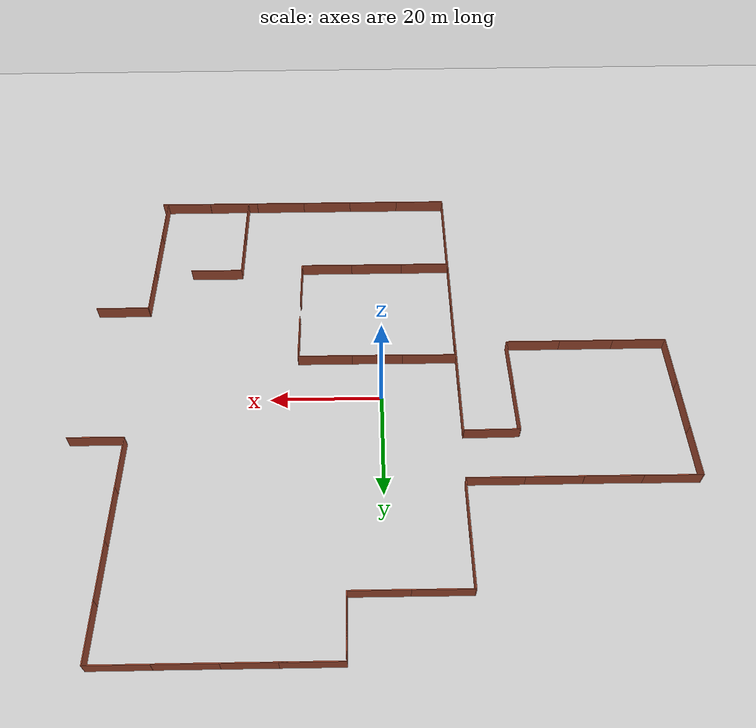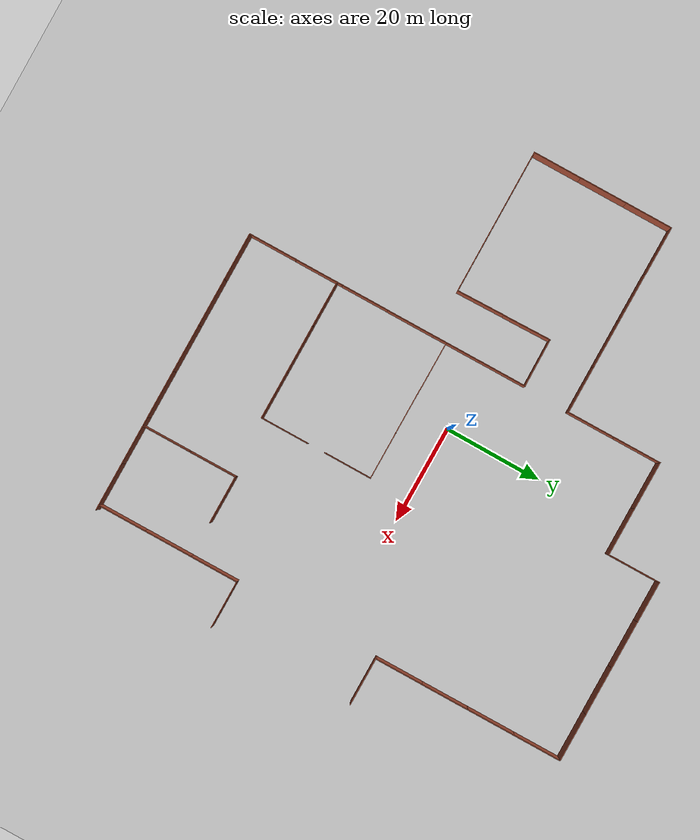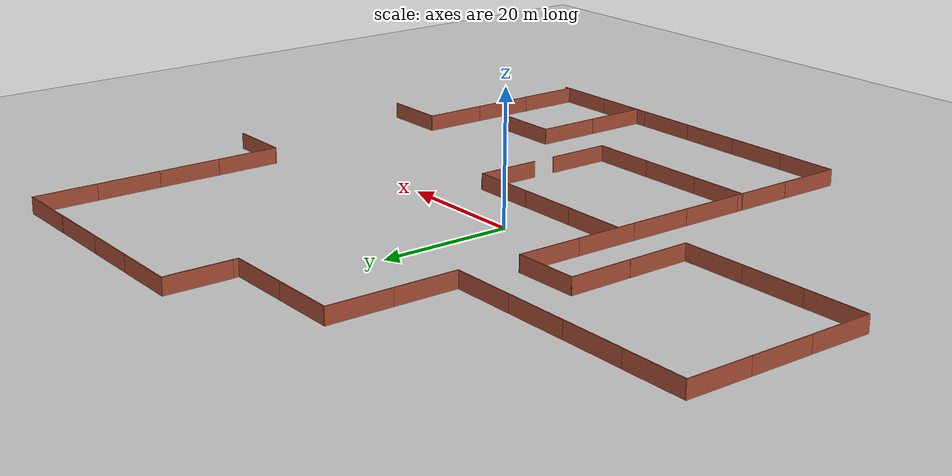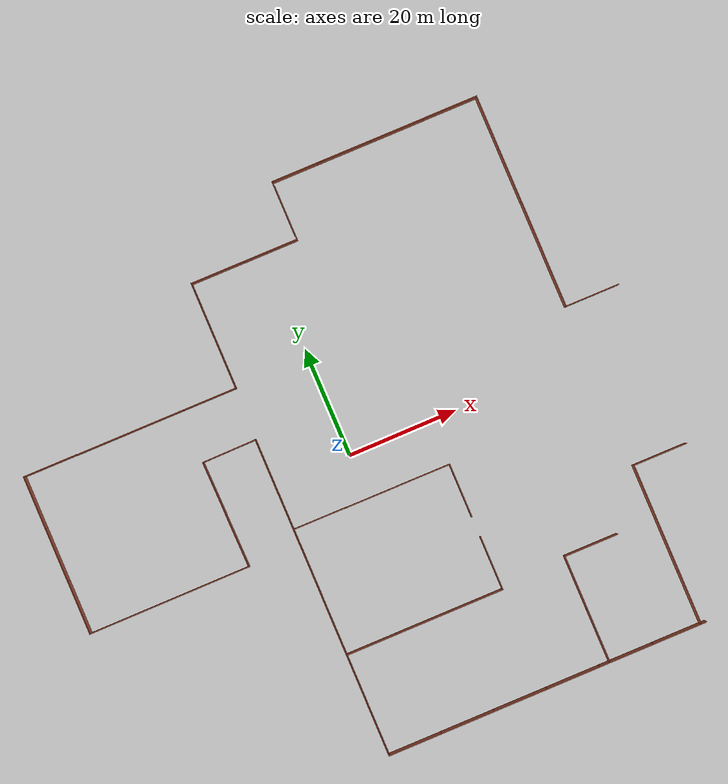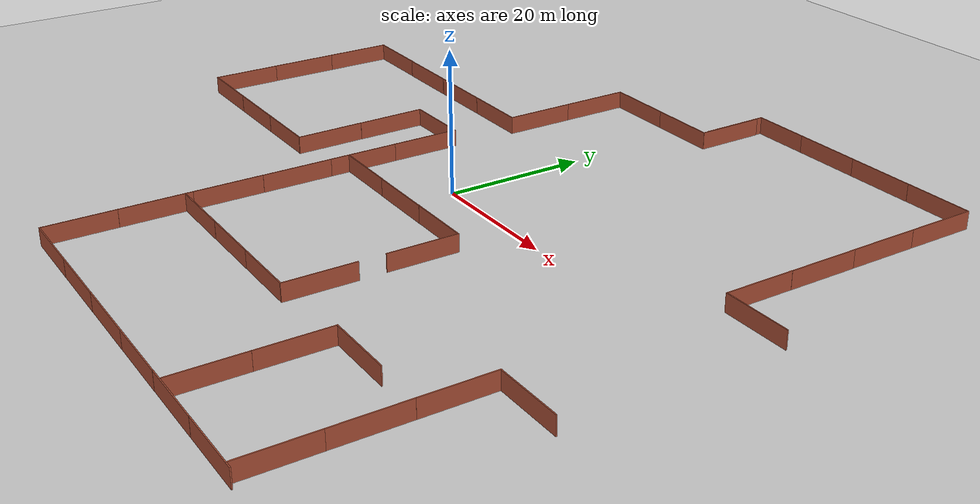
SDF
<sdf version="1.7">
 <world name="default">
  <light name="sun" type="directional">
   <pose>0 0 10 0 -0 0</pose>
   <diffuse>0.8 0.8 0.8 1</diffuse>
   <specular>0.2 0.2 0.2 1</specular>
   <attenuation>
    <range>1000</range>
    <constant>0.9</constant>
    <linear>0.01</linear>
    <quadratic>0.001</quadratic>
   </attenuation>
   <direction>-0.5 0.1 -0.9</direction>
   <spot><inner_angle>0</inner_angle><outer_angle>0</outer_angle><falloff>0</falloff></spot>
  </light>
  <model name="ground_plane">
   <static>1</static>
   <link name="link">
    <collision name="collision">
     <geometry><plane><normal>0 0 1</normal><size>100 100</size></plane></geometry>
     <surface>
      <contact><collide_bitmask>65535</collide_bitmask></contact>
      <friction><ode><mu>100</mu><mu2>50</mu2></ode></friction>
     </surface>
    </collision>
    <visual name="visual">
     <cast_shadows>0</cast_shadows>
     <geometry><plane><normal>0 0 1</normal><size>100 100</size></plane></geometry>
     <material>
      <script><uri>file://media/materials/scripts/gazebo.material</uri><name>Gazebo/Grey</name></script>
     </material>
    </visual>
   </link>
  </model>
  <gravity>0 0 -9.8</gravity>
  <magnetic_field>6e-06 2.3e-05 -4.2e-05</magnetic_field>
  <atmosphere type="adiabatic"/>
  <physics type="ode">
   <max_step_size>0.001</max_step_size>
   <real_time_factor>1</real_time_factor>
   <real_time_update_rate>1000</real_time_update_rate>
  </physics>
  <scene><ambient>0.4 0.4 0.4 1</ambient><background>0.7 0.7 0.7 1</background><shadows>1</shadows></scene>
  <spherical_coordinates>
   <surface_model>EARTH_WGS84</surface_model>
   <latitude_deg>0</latitude_deg>
   <longitude_deg>0</longitude_deg>
   <elevation>0</elevation>
   <heading_deg>0</heading_deg>
  </spherical_coordinates>
  <model name="wall_10m">
   <pose>-28.6058 -9.03269 0 0 -0 1.56908</pose>
   <link name="Wall_9">
    <collision name="Wall_9_Collision">
     <geometry><box><size>10 0.15 2.5</size></box></geometry>
     <pose>0 0 1.25 0 -0 0</pose>
    </collision>
    <visual name="Wall_9_Visual">
     <pose>0 0 1.25 0 -0 0</pose>
     <geometry><box><size>10 0.15 2.5</size></box></geometry>
     <material>
      <script><uri>file://media/materials/scripts/gazebo.material</uri><name>Gazebo/Bricks</name></script>
      <ambient>1 1 1 1</ambient>
     </material>
     <meta><layer>0</layer></meta>
    </visual>
    <pose>-1.92461 -0 0 0 -0 -1.5708</pose>
   </link>
   <static>1</static>
  </model>
  <model name="wall_10m_clone">
   <pose>-38.5604 -9.02358 0 0 -0 1.56908</pose>
   <link name="Wall_9">
    <collision name="Wall_9_Collision">
     <geometry><box><size>10 0.15 2.5</size></box></geometry>
     <pose>0 0 1.25 0 -0 0</pose>
    </collision>
    <visual name="Wall_9_Visual">
     <pose>0 0 1.25 0 -0 0</pose>
     <geometry><box><size>10 0.15 2.5</size></box></geometry>
     <material>
      <script><uri>file://media/materials/scripts/gazebo.material</uri><name>Gazebo/Bricks</name></script>
      <ambient>1 1 1 1</ambient>
     </material>
     <meta><layer>0</layer></meta>
    </visual>
    <pose>-1.92461 -0 0 0 -0 -1.5708</pose>
   </link>
   <static>1</static>
  </model>
  <model name="wall_10m_clone_0">
   <pose>-48.4818 -9.01046 0 0 -0 1.56908</pose>
   <link name="Wall_9">
    <collision name="Wall_9_Collision">
     <geometry><box><size>10 0.15 2.5</size></box></geometry>
     <pose>0 0 1.25 0 -0 0</pose>
    </collision>
    <visual name="Wall_9_Visual">
     <pose>0 0 1.25 0 -0 0</pose>
     <geometry><box><size>10 0.15 2.5</size></box></geometry>
     <material>
      <script><uri>file://media/materials/scripts/gazebo.material</uri><name>Gazebo/Bricks</name></script>
      <ambient>1 1 1 1</ambient>
     </material>
     <meta><layer>0</layer></meta>
    </visual>
    <pose>-1.92461 -0 0 0 -0 -1.5708</pose>
   </link>
   <static>1</static>
  </model>
  <model name="wall_10m_0">
   <pose>-51.4957 -5.99056 0 0 -0 0</pose>
   <link name="Wall_9">
    <collision name="Wall_9_Collision">
     <geometry><box><size>10 0.15 2.5</size></box></geometry>
     <pose>0 0 1.25 0 -0 0</pose>
    </collision>
    <visual name="Wall_9_Visual">
     <pose>0 0 1.25 0 -0 0</pose>
     <geometry><box><size>10 0.15 2.5</size></box></geometry>
     <material>
      <script><uri>file://media/materials/scripts/gazebo.material</uri><name>Gazebo/Bricks</name></script>
      <ambient>1 1 1 1</ambient>
     </material>
     <meta><layer>0</layer></meta>
    </visual>
    <pose>-1.92461 -0 0 0 -0 -1.5708</pose>
   </link>
   <static>1</static>
  </model>
  <model name="wall_10m_0_clone">
   <pose>-51.5088 3.87184 0 0 -0 0</pose>
   <link name="Wall_9">
    <collision name="Wall_9_Collision">
     <geometry><box><size>10 0.15 2.5</size></box></geometry>
     <pose>0 0 1.25 0 -0 0</pose>
    </collision>
    <visual name="Wall_9_Visual">
     <pose>0 0 1.25 0 -0 0</pose>
     <geometry><box><size>10 0.15 2.5</size></box></geometry>
     <material>
      <script><uri>file://media/materials/scripts/gazebo.material</uri><name>Gazebo/Bricks</name></script>
      <ambient>1 1 1 1</ambient>
     </material>
     <meta><layer>0</layer></meta>
    </visual>
    <pose>-1.92461 -0 0 0 -0 -1.5708</pose>
   </link>
   <static>1</static>
  </model>
  <model name="wall_10m_0_clone_0">
   <pose>-51.5159 13.658 0 0 -0 0</pose>
   <link name="Wall_9">
    <collision name="Wall_9_Collision">
     <geometry><box><size>10 0.15 2.5</size></box></geometry>
     <pose>0 0 1.25 0 -0 0</pose>
    </collision>
    <visual name="Wall_9_Visual">
     <pose>0 0 1.25 0 -0 0</pose>
     <geometry><box><size>10 0.15 2.5</size></box></geometry>
     <material>
      <script><uri>file://media/materials/scripts/gazebo.material</uri><name>Gazebo/Bricks</name></script>
      <ambient>1 1 1 1</ambient>
     </material>
     <meta><layer>0</layer></meta>
    </visual>
    <pose>-1.92461 -0 0 0 -0 -1.5708</pose>
   </link>
   <static>1</static>
  </model>
  <model name="wall_10m_1">
   <pose>-48.5143 16.631 0 0 0 -1.57506</pose>
   <link name="Wall_9">
    <collision name="Wall_9_Collision">
     <geometry><box><size>10 0.15 2.5</size></box></geometry>
     <pose>0 0 1.25 0 -0 0</pose>
    </collision>
    <visual name="Wall_9_Visual">
     <pose>0 0 1.25 0 -0 0</pose>
     <geometry><box><size>10 0.15 2.5</size></box></geometry>
     <material>
      <script><uri>file://media/materials/scripts/gazebo.material</uri><name>Gazebo/Bricks</name></script>
      <ambient>1 1 1 1</ambient>
     </material>
     <meta><layer>0</layer></meta>
    </visual>
    <pose>-1.92461 -0 0 0 -0 -1.5708</pose>
   </link>
   <static>1</static>
  </model>
  <model name="wall_10m_1_clone">
   <pose>-38.524 16.5534 0 0 0 -1.57506</pose>
   <link name="Wall_9">
    <collision name="Wall_9_Collision">
     <geometry><box><size>10 0.15 2.5</size></box></geometry>
     <pose>0 0 1.25 0 -0 0</pose>
    </collision>
    <visual name="Wall_9_Visual">
     <pose>0 0 1.25 0 -0 0</pose>
     <geometry><box><size>10 0.15 2.5</size></box></geometry>
     <material>
      <script><uri>file://media/materials/scripts/gazebo.material</uri><name>Gazebo/Bricks</name></script>
      <ambient>1 1 1 1</ambient>
     </material>
     <meta><layer>0</layer></meta>
    </visual>
    <pose>-1.92461 -0 0 0 -0 -1.5708</pose>
   </link>
   <static>1</static>
  </model>
  <model name="wall_10m_1_clone_0">
   <pose>-28.4914 16.5185 0 0 0 -1.57506</pose>
   <link name="Wall_9">
    <collision name="Wall_9_Collision">
     <geometry><box><size>10 0.15 2.5</size></box></geometry>
     <pose>0 0 1.25 0 -0 0</pose>
    </collision>
    <visual name="Wall_9_Visual">
     <pose>0 0 1.25 0 -0 0</pose>
     <geometry><box><size>10 0.15 2.5</size></box></geometry>
     <material>
      <script><uri>file://media/materials/scripts/gazebo.material</uri><name>Gazebo/Bricks</name></script>
      <ambient>1 1 1 1</ambient>
     </material>
     <meta><layer>0</layer></meta>
    </visual>
    <pose>-1.92461 -0 0 0 -0 -1.5708</pose>
   </link>
   <static>1</static>
  </model>
  <model name="wall_10m_2">
   <pose>-25.6553 -6.07535 0 0 0 -3.1247</pose>
   <link name="Wall_9">
    <collision name="Wall_9_Collision">
     <geometry><box><size>10 0.15 2.5</size></box></geometry>
     <pose>0 0 1.25 0 -0 0</pose>
    </collision>
    <visual name="Wall_9_Visual">
     <pose>0 0 1.25 0 -0 0</pose>
     <geometry><box><size>10 0.15 2.5</size></box></geometry>
     <material>
      <script><uri>file://media/materials/scripts/gazebo.material</uri><name>Gazebo/Bricks</name></script>
      <ambient>1 1 1 1</ambient>
     </material>
     <meta><layer>0</layer></meta>
    </visual>
    <pose>-1.92461 -0 0 0 -0 -1.5708</pose>
   </link>
   <static>1</static>
  </model>
  <model name="wall_10m_2_clone">
   <pose>-25.7913 3.79964 0 0 0 -3.1247</pose>
   <link name="Wall_9">
    <collision name="Wall_9_Collision">
     <geometry><box><size>10 0.15 2.5</size></box></geometry>
     <pose>0 0 1.25 0 -0 0</pose>
    </collision>
    <visual name="Wall_9_Visual">
     <pose>0 0 1.25 0 -0 0</pose>
     <geometry><box><size>10 0.15 2.5</size></box></geometry>
     <material>
      <script><uri>file://media/materials/scripts/gazebo.material</uri><name>Gazebo/Bricks</name></script>
      <ambient>1 1 1 1</ambient>
     </material>
     <meta><layer>0</layer></meta>
    </visual>
    <pose>-1.92461 -0 0 0 -0 -1.5708</pose>
   </link>
   <static>1</static>
  </model>
  <model name="wall_10m_3">
   <pose>-19.0149 10.7166 0 0 -0 1.57789</pose>
   <link name="Wall_9">
    <collision name="Wall_9_Collision">
     <geometry><box><size>10 0.15 2.5</size></box></geometry>
     <pose>0 0 1.25 0 -0 0</pose>
    </collision>
    <visual name="Wall_9_Visual">
     <pose>0 0 1.25 0 -0 0</pose>
     <geometry><box><size>10 0.15 2.5</size></box></geometry>
     <material>
      <script><uri>file://media/materials/scripts/gazebo.material</uri><name>Gazebo/Bricks</name></script>
      <ambient>1 1 1 1</ambient>
     </material>
     <meta><layer>0</layer></meta>
    </visual>
    <pose>-1.92461 -0 0 0 -0 -1.5708</pose>
   </link>
   <static>1</static>
  </model>
  <model name="wall_10m_1_clone_0_clone">
   <pose>-18.6378 16.4788 0 0 0 -1.57506</pose>
   <link name="Wall_9">
    <collision name="Wall_9_Collision">
     <geometry><box><size>10 0.15 2.5</size></box></geometry>
     <pose>0 0 1.25 0 -0 0</pose>
    </collision>
    <visual name="Wall_9_Visual">
     <pose>0 0 1.25 0 -0 0</pose>
     <geometry><box><size>10 0.15 2.5</size></box></geometry>
     <material>
      <script><uri>file://media/materials/scripts/gazebo.material</uri><name>Gazebo/Bricks</name></script>
      <ambient>1 1 1 1</ambient>
     </material>
     <meta><layer>0</layer></meta>
    </visual>
    <pose>-1.92461 -0 0 0 -0 -1.5708</pose>
   </link>
   <static>1</static>
  </model>
  <model name="wall_10m_0_clone_0_clone">
   <pose>-11.7671 23.3153 0 0 -0 0</pose>
   <link name="Wall_9">
    <collision name="Wall_9_Collision">
     <geometry><box><size>10 0.15 2.5</size></box></geometry>
     <pose>0 0 1.25 0 -0 0</pose>
    </collision>
    <visual name="Wall_9_Visual">
     <pose>0 0 1.25 0 -0 0</pose>
     <geometry><box><size>10 0.15 2.5</size></box></geometry>
     <material>
      <script><uri>file://media/materials/scripts/gazebo.material</uri><name>Gazebo/Bricks</name></script>
      <ambient>1 1 1 1</ambient>
     </material>
     <meta><layer>0</layer></meta>
    </visual>
    <pose>-1.92461 -0 0 0 -0 -1.5708</pose>
   </link>
   <static>1</static>
  </model>
  <model name="wall_10m_0_clone_0_clone_0">
   <pose>-11.7754 33.1798 0 0 -0 0</pose>
   <link name="Wall_9">
    <collision name="Wall_9_Collision">
     <geometry><box><size>10 0.15 2.5</size></box></geometry>
     <pose>0 0 1.25 0 -0 0</pose>
    </collision>
    <visual name="Wall_9_Visual">
     <pose>0 0 1.25 0 -0 0</pose>
     <geometry><box><size>10 0.15 2.5</size></box></geometry>
     <material>
      <script><uri>file://media/materials/scripts/gazebo.material</uri><name>Gazebo/Bricks</name></script>
      <ambient>1 1 1 1</ambient>
     </material>
     <meta><layer>0</layer></meta>
    </visual>
    <pose>-1.92461 -0 0 0 -0 -1.5708</pose>
   </link>
   <static>1</static>
  </model>
  <model name="wall_10m_4">
   <pose>-12.1307 3.92439 0 0 -0 0</pose>
   <link name="Wall_9">
    <collision name="Wall_9_Collision">
     <geometry><box><size>10 0.15 2.5</size></box></geometry>
     <pose>0 0 1.25 0 -0 0</pose>
    </collision>
    <visual name="Wall_9_Visual">
     <pose>0 0 1.25 0 -0 0</pose>
     <geometry><box><size>10 0.15 2.5</size></box></geometry>
     <material>
      <script><uri>file://media/materials/scripts/gazebo.material</uri><name>Gazebo/Bricks</name></script>
      <ambient>1 1 1 1</ambient>
     </material>
     <meta><layer>0</layer></meta>
    </visual>
    <pose>-1.92461 -0 0 0 -0 -1.5708</pose>
   </link>
   <static>1</static>
  </model>
  <model name="wall_10m_4_clone">
   <pose>-12.1193 -5.91114 0 0 -0 0</pose>
   <link name="Wall_9">
    <collision name="Wall_9_Collision">
     <geometry><box><size>10 0.15 2.5</size></box></geometry>
     <pose>0 0 1.25 0 -0 0</pose>
    </collision>
    <visual name="Wall_9_Visual">
     <pose>0 0 1.25 0 -0 0</pose>
     <geometry><box><size>10 0.15 2.5</size></box></geometry>
     <material>
      <script><uri>file://media/materials/scripts/gazebo.material</uri><name>Gazebo/Bricks</name></script>
      <ambient>1 1 1 1</ambient>
     </material>
     <meta><layer>0</layer></meta>
    </visual>
    <pose>-1.92461 -0 0 0 -0 -1.5708</pose>
   </link>
   <static>1</static>
  </model>
  <model name="wall_10m_4_clone_0">
   <pose>-12.1069 -15.8322 0 0 -0 0</pose>
   <link name="Wall_9">
    <collision name="Wall_9_Collision">
     <geometry><box><size>10 0.15 2.5</size></box></geometry>
     <pose>0 0 1.25 0 -0 0</pose>
    </collision>
    <visual name="Wall_9_Visual">
     <pose>0 0 1.25 0 -0 0</pose>
     <geometry><box><size>10 0.15 2.5</size></box></geometry>
     <material>
      <script><uri>file://media/materials/scripts/gazebo.material</uri><name>Gazebo/Bricks</name></script>
      <ambient>1 1 1 1</ambient>
     </material>
     <meta><layer>0</layer></meta>
    </visual>
    <pose>-1.92461 -0 0 0 -0 -1.5708</pose>
   </link>
   <static>1</static>
  </model>
  <model name="wall_10m_4_clone_1">
   <pose>-12.1262 -25.6949 0 0 -0 0</pose>
   <link name="Wall_9">
    <collision name="Wall_9_Collision">
     <geometry><box><size>10 0.15 2.5</size></box></geometry>
     <pose>0 0 1.25 0 -0 0</pose>
    </collision>
    <visual name="Wall_9_Visual">
     <pose>0 0 1.25 0 -0 0</pose>
     <geometry><box><size>10 0.15 2.5</size></box></geometry>
     <material>
      <script><uri>file://media/materials/scripts/gazebo.material</uri><name>Gazebo/Bricks</name></script>
      <ambient>1 1 1 1</ambient>
     </material>
     <meta><layer>0</layer></meta>
    </visual>
    <pose>-1.92461 -0 0 0 -0 -1.5708</pose>
   </link>
   <static>1</static>
  </model>
  <model name="wall_10m_4_clone_2">
   <pose>-12.1211 -35.6125 0 0 -0 0</pose>
   <link name="Wall_9">
    <collision name="Wall_9_Collision">
     <geometry><box><size>10 0.15 2.5</size></box></geometry>
     <pose>0 0 1.25 0 -0 0</pose>
    </collision>
    <visual name="Wall_9_Visual">
     <pose>0 0 1.25 0 -0 0</pose>
     <geometry><box><size>10 0.15 2.5</size></box></geometry>
     <material>
      <script><uri>file://media/materials/scripts/gazebo.material</uri><name>Gazebo/Bricks</name></script>
      <ambient>1 1 1 1</ambient>
     </material>
     <meta><layer>0</layer></meta>
    </visual>
    <pose>-1.92461 -0 0 0 -0 -1.5708</pose>
   </link>
   <static>1</static>
  </model>
  <model name="wall_10m_4_clone_3">
   <pose>-12.1379 -45.4997 0 0 -0 0</pose>
   <link name="Wall_9">
    <collision name="Wall_9_Collision">
     <geometry><box><size>10 0.15 2.5</size></box></geometry>
     <pose>0 0 1.25 0 -0 0</pose>
    </collision>
    <visual name="Wall_9_Visual">
     <pose>0 0 1.25 0 -0 0</pose>
     <geometry><box><size>10 0.15 2.5</size></box></geometry>
     <material>
      <script><uri>file://media/materials/scripts/gazebo.material</uri><name>Gazebo/Bricks</name></script>
      <ambient>1 1 1 1</ambient>
     </material>
     <meta><layer>0</layer></meta>
    </visual>
    <pose>-1.92461 -0 0 0 -0 -1.5708</pose>
   </link>
   <static>1</static>
  </model>
  <model name="wall_10m_4_clone_4">
   <pose>-9.11565 -48.5273 0 0 -0 1.56693</pose>
   <link name="Wall_9">
    <collision name="Wall_9_Collision">
     <geometry><box><size>10 0.15 2.5</size></box></geometry>
     <pose>0 0 1.25 0 -0 0</pose>
    </collision>
    <visual name="Wall_9_Visual">
     <pose>0 0 1.25 0 -0 0</pose>
     <geometry><box><size>10 0.15 2.5</size></box></geometry>
     <material>
      <script><uri>file://media/materials/scripts/gazebo.material</uri><name>Gazebo/Bricks</name></script>
      <ambient>1 1 1 1</ambient>
     </material>
     <meta><layer>0</layer></meta>
    </visual>
    <pose>-1.92461 -0 0 0 -0 -1.5708</pose>
   </link>
   <static>1</static>
  </model>
  <model name="wall_10m_4_clone_4_clone">
   <pose>0.775059 -48.5574 0 0 -0 1.56693</pose>
   <link name="Wall_9">
    <collision name="Wall_9_Collision">
     <geometry><box><size>10 0.15 2.5</size></box></geometry>
     <pose>0 0 1.25 0 -0 0</pose>
    </collision>
    <visual name="Wall_9_Visual">
     <pose>0 0 1.25 0 -0 0</pose>
     <geometry><box><size>10 0.15 2.5</size></box></geometry>
     <material>
      <script><uri>file://media/materials/scripts/gazebo.material</uri><name>Gazebo/Bricks</name></script>
      <ambient>1 1 1 1</ambient>
     </material>
     <meta><layer>0</layer></meta>
    </visual>
    <pose>-1.92461 -0 0 0 -0 -1.5708</pose>
   </link>
   <static>1</static>
  </model>
  <model name="wall_10m_4_clone_4_clone_0">
   <pose>10.657 -48.5868 0 0 -0 1.56693</pose>
   <link name="Wall_9">
    <collision name="Wall_9_Collision">
     <geometry><box><size>10 0.15 2.5</size></box></geometry>
     <pose>0 0 1.25 0 -0 0</pose>
    </collision>
    <visual name="Wall_9_Visual">
     <pose>0 0 1.25 0 -0 0</pose>
     <geometry><box><size>10 0.15 2.5</size></box></geometry>
     <material>
      <script><uri>file://media/materials/scripts/gazebo.material</uri><name>Gazebo/Bricks</name></script>
      <ambient>1 1 1 1</ambient>
     </material>
     <meta><layer>0</layer></meta>
    </visual>
    <pose>-1.92461 -0 0 0 -0 -1.5708</pose>
   </link>
   <static>1</static>
  </model>
  <model name="wall_10m_4_clone_4_clone_1">
   <pose>20.541 -48.6208 0 0 -0 1.56693</pose>
   <link name="Wall_9">
    <collision name="Wall_9_Collision">
     <geometry><box><size>10 0.15 2.5</size></box></geometry>
     <pose>0 0 1.25 0 -0 0</pose>
    </collision>
    <visual name="Wall_9_Visual">
     <pose>0 0 1.25 0 -0 0</pose>
     <geometry><box><size>10 0.15 2.5</size></box></geometry>
     <material>
      <script><uri>file://media/materials/scripts/gazebo.material</uri><name>Gazebo/Bricks</name></script>
      <ambient>1 1 1 1</ambient>
     </material>
     <meta><layer>0</layer></meta>
    </visual>
    <pose>-1.92461 -0 0 0 -0 -1.5708</pose>
   </link>
   <static>1</static>
  </model>
  <model name="wall_10m_4_clone_4_clone_2">
   <pose>30.4722 -48.6461 0 0 -0 1.56693</pose>
   <link name="Wall_9">
    <collision name="Wall_9_Collision">
     <geometry><box><size>10 0.15 2.5</size></box></geometry>
     <pose>0 0 1.25 0 -0 0</pose>
    </collision>
    <visual name="Wall_9_Visual">
     <pose>0 0 1.25 0 -0 0</pose>
     <geometry><box><size>10 0.15 2.5</size></box></geometry>
     <material>
      <script><uri>file://media/materials/scripts/gazebo.material</uri><name>Gazebo/Bricks</name></script>
      <ambient>1 1 1 1</ambient>
     </material>
     <meta><layer>0</layer></meta>
    </visual>
    <pose>-1.92461 -0 0 0 -0 -1.5708</pose>
   </link>
   <static>1</static>
  </model>
  <model name="wall_10m_5">
   <pose>-9.02984 -6.17097 0 0 -0 1.56477</pose>
   <link name="Wall_9">
    <collision name="Wall_9_Collision">
     <geometry><box><size>10 0.15 2.5</size></box></geometry>
     <pose>0 0 1.25 0 -0 0</pose>
    </collision>
    <visual name="Wall_9_Visual">
     <pose>0 0 1.25 0 -0 0</pose>
     <geometry><box><size>10 0.15 2.5</size></box></geometry>
     <material>
      <script><uri>file://media/materials/scripts/gazebo.material</uri><name>Gazebo/Bricks</name></script>
      <ambient>1 1 1 1</ambient>
     </material>
     <meta><layer>0</layer></meta>
    </visual>
    <pose>-1.92461 -0 0 0 -0 -1.5708</pose>
   </link>
   <static>1</static>
  </model>
  <model name="wall_10m_5_clone">
   <pose>0.602063 -6.26165 0 0 -0 1.56477</pose>
   <link name="Wall_9">
    <collision name="Wall_9_Collision">
     <geometry><box><size>10 0.15 2.5</size></box></geometry>
     <pose>0 0 1.25 0 -0 0</pose>
    </collision>
    <visual name="Wall_9_Visual">
     <pose>0 0 1.25 0 -0 0</pose>
     <geometry><box><size>10 0.15 2.5</size></box></geometry>
     <material>
      <script><uri>file://media/materials/scripts/gazebo.material</uri><name>Gazebo/Bricks</name></script>
      <ambient>1 1 1 1</ambient>
     </material>
     <meta><layer>0</layer></meta>
    </visual>
    <pose>-1.92461 -0 0 0 -0 -1.5708</pose>
   </link>
   <static>1</static>
  </model>
  <model name="wall_10m_5_clone_0">
   <pose>10.2647 -6.29921 0 0 -0 1.56477</pose>
   <link name="Wall_9">
    <collision name="Wall_9_Collision">
     <geometry><box><size>10 0.15 2.5</size></box></geometry>
     <pose>0 0 1.25 0 -0 0</pose>
    </collision>
    <visual name="Wall_9_Visual">
     <pose>0 0 1.25 0 -0 0</pose>
     <geometry><box><size>10 0.15 2.5</size></box></geometry>
     <material>
      <script><uri>file://media/materials/scripts/gazebo.material</uri><name>Gazebo/Bricks</name></script>
      <ambient>1 1 1 1</ambient>
     </material>
     <meta><layer>0</layer></meta>
    </visual>
    <pose>-1.92461 -0 0 0 -0 -1.5708</pose>
   </link>
   <static>1</static>
  </model>
  <model name="wall_10m_5_clone_1">
   <pose>13.3177 -13.1777 0 0 -0 3.13988</pose>
   <link name="Wall_9">
    <collision name="Wall_9_Collision">
     <geometry><box><size>10 0.15 2.5</size></box></geometry>
     <pose>0 0 1.25 0 -0 0</pose>
    </collision>
    <visual name="Wall_9_Visual">
     <pose>0 0 1.25 0 -0 0</pose>
     <geometry><box><size>10 0.15 2.5</size></box></geometry>
     <material>
      <script><uri>file://media/materials/scripts/gazebo.material</uri><name>Gazebo/Bricks</name></script>
      <ambient>1 1 1 1</ambient>
     </material>
     <meta><layer>0</layer></meta>
    </visual>
    <pose>-1.92461 -0 0 0 -0 -1.5708</pose>
   </link>
   <static>1</static>
  </model>
  <model name="wall_10m_5_clone_1_clone">
   <pose>13.3179 -26.825 0 0 -0 3.13988</pose>
   <link name="Wall_9">
    <collision name="Wall_9_Collision">
     <geometry><box><size>10 0.15 2.5</size></box></geometry>
     <pose>0 0 1.25 0 -0 0</pose>
    </collision>
    <visual name="Wall_9_Visual">
     <pose>0 0 1.25 0 -0 0</pose>
     <geometry><box><size>10 0.15 2.5</size></box></geometry>
     <material>
      <script><uri>file://media/materials/scripts/gazebo.material</uri><name>Gazebo/Bricks</name></script>
      <ambient>1 1 1 1</ambient>
     </material>
     <meta><layer>0</layer></meta>
    </visual>
    <pose>-1.92461 -0 0 0 -0 -1.5708</pose>
   </link>
   <static>1</static>
  </model>
  <model name="wall_10m_4_clone_4_clone_3">
   <pose>10.3014 -29.8001 0 0 -0 1.56693</pose>
   <link name="Wall_9">
    <collision name="Wall_9_Collision">
     <geometry><box><size>10 0.15 2.5</size></box></geometry>
     <pose>0 0 1.25 0 -0 0</pose>
    </collision>
    <visual name="Wall_9_Visual">
     <pose>0 0 1.25 0 -0 0</pose>
     <geometry><box><size>10 0.15 2.5</size></box></geometry>
     <material>
      <script><uri>file://media/materials/scripts/gazebo.material</uri><name>Gazebo/Bricks</name></script>
      <ambient>1 1 1 1</ambient>
     </material>
     <meta><layer>0</layer></meta>
    </visual>
    <pose>-1.92461 -0 0 0 -0 -1.5708</pose>
   </link>
   <static>1</static>
  </model>
  <model name="wall_10m_4_clone_4_clone_4">
   <pose>0.337995 -29.7627 0 0 -0 1.56693</pose>
   <link name="Wall_9">
    <collision name="Wall_9_Collision">
     <geometry><box><size>10 0.15 2.5</size></box></geometry>
     <pose>0 0 1.25 0 -0 0</pose>
    </collision>
    <visual name="Wall_9_Visual">
     <pose>0 0 1.25 0 -0 0</pose>
     <geometry><box><size>10 0.15 2.5</size></box></geometry>
     <material>
      <script><uri>file://media/materials/scripts/gazebo.material</uri><name>Gazebo/Bricks</name></script>
      <ambient>1 1 1 1</ambient>
     </material>
     <meta><layer>0</layer></meta>
    </visual>
    <pose>-1.92461 -0 0 0 -0 -1.5708</pose>
   </link>
   <static>1</static>
  </model>
  <model name="wall_10m_4_clone_4_clone_5">
   <pose>-9.12119 -29.7368 0 0 -0 1.56693</pose>
   <link name="Wall_9">
    <collision name="Wall_9_Collision">
     <geometry><box><size>10 0.15 2.5</size></box></geometry>
     <pose>0 0 1.25 0 -0 0</pose>
    </collision>
    <visual name="Wall_9_Visual">
     <pose>0 0 1.25 0 -0 0</pose>
     <geometry><box><size>10 0.15 2.5</size></box></geometry>
     <material>
      <script><uri>file://media/materials/scripts/gazebo.material</uri><name>Gazebo/Bricks</name></script>
      <ambient>1 1 1 1</ambient>
     </material>
     <meta><layer>0</layer></meta>
    </visual>
    <pose>-1.92461 -0 0 0 -0 -1.5708</pose>
   </link>
   <static>1</static>
  </model>
  <model name="wall_10m_4_clone_4_clone_2_clone">
   <pose>40.4919 -48.6775 0 0 -0 1.56693</pose>
   <link name="Wall_9">
    <collision name="Wall_9_Collision">
     <geometry><box><size>10 0.15 2.5</size></box></geometry>
     <pose>0 0 1.25 0 -0 0</pose>
    </collision>
    <visual name="Wall_9_Visual">
     <pose>0 0 1.25 0 -0 0</pose>
     <geometry><box><size>10 0.15 2.5</size></box></geometry>
     <material>
      <script><uri>file://media/materials/scripts/gazebo.material</uri><name>Gazebo/Bricks</name></script>
      <ambient>1 1 1 1</ambient>
     </material>
     <meta><layer>0</layer></meta>
    </visual>
    <pose>-1.92461 -0 0 0 -0 -1.5708</pose>
   </link>
   <static>1</static>
  </model>
  <model name="wall_10m_5_clone_1_clone_clone">
   <pose>42.5546 -45.6682 0 0 -0 3.13988</pose>
   <link name="Wall_9">
    <collision name="Wall_9_Collision">
     <geometry><box><size>10 0.15 2.5</size></box></geometry>
     <pose>0 0 1.25 0 -0 0</pose>
    </collision>
    <visual name="Wall_9_Visual">
     <pose>0 0 1.25 0 -0 0</pose>
     <geometry><box><size>10 0.15 2.5</size></box></geometry>
     <material>
      <script><uri>file://media/materials/scripts/gazebo.material</uri><name>Gazebo/Bricks</name></script>
      <ambient>1 1 1 1</ambient>
     </material>
     <meta><layer>0</layer></meta>
    </visual>
    <pose>-1.92461 -0 0 0 -0 -1.5708</pose>
   </link>
   <static>1</static>
  </model>
  <model name="wall_10m_5_clone_1_clone_clone_0">
   <pose>42.5672 -35.7291 0 0 -0 3.13988</pose>
   <link name="Wall_9">
    <collision name="Wall_9_Collision">
     <geometry><box><size>10 0.15 2.5</size></box></geometry>
     <pose>0 0 1.25 0 -0 0</pose>
    </collision>
    <visual name="Wall_9_Visual">
     <pose>0 0 1.25 0 -0 0</pose>
     <geometry><box><size>10 0.15 2.5</size></box></geometry>
     <material>
      <script><uri>file://media/materials/scripts/gazebo.material</uri><name>Gazebo/Bricks</name></script>
      <ambient>1 1 1 1</ambient>
     </material>
     <meta><layer>0</layer></meta>
    </visual>
    <pose>-1.92461 -0 0 0 -0 -1.5708</pose>
   </link>
   <static>1</static>
  </model>
  <model name="wall_10m_5_clone_1_clone_clone_1">
   <pose>42.594 -25.7852 0 0 -0 3.13988</pose>
   <link name="Wall_9">
    <collision name="Wall_9_Collision">
     <geometry><box><size>10 0.15 2.5</size></box></geometry>
     <pose>0 0 1.25 0 -0 0</pose>
    </collision>
    <visual name="Wall_9_Visual">
     <pose>0 0 1.25 0 -0 0</pose>
     <geometry><box><size>10 0.15 2.5</size></box></geometry>
     <material>
      <script><uri>file://media/materials/scripts/gazebo.material</uri><name>Gazebo/Bricks</name></script>
      <ambient>1 1 1 1</ambient>
     </material>
     <meta><layer>0</layer></meta>
    </visual>
    <pose>-1.92461 -0 0 0 -0 -1.5708</pose>
   </link>
   <static>1</static>
  </model>
  <model name="wall_10m_4_clone_4_clone_2_clone_0_clone">
   <pose>49.4925 -18.9638 0 0 -0 1.56693</pose>
   <link name="Wall_9">
    <collision name="Wall_9_Collision">
     <geometry><box><size>10 0.15 2.5</size></box></geometry>
     <pose>0 0 1.25 0 -0 0</pose>
    </collision>
    <visual name="Wall_9_Visual">
     <pose>0 0 1.25 0 -0 0</pose>
     <geometry><box><size>10 0.15 2.5</size></box></geometry>
     <material>
      <script><uri>file://media/materials/scripts/gazebo.material</uri><name>Gazebo/Bricks</name></script>
      <ambient>1 1 1 1</ambient>
     </material>
     <meta><layer>0</layer></meta>
    </visual>
    <pose>-1.92461 -0 0 0 -0 -1.5708</pose>
   </link>
   <static>1</static>
  </model>
  <model name="wall_10m_1_clone_0_clone_clone">
   <pose>-8.74387 36.1549 0 0 0 -1.57506</pose>
   <link name="Wall_9">
    <collision name="Wall_9_Collision">
     <geometry><box><size>10 0.15 2.5</size></box></geometry>
     <pose>0 0 1.25 0 -0 0</pose>
    </collision>
    <visual name="Wall_9_Visual">
     <pose>0 0 1.25 0 -0 0</pose>
     <geometry><box><size>10 0.15 2.5</size></box></geometry>
     <material>
      <script><uri>file://media/materials/scripts/gazebo.material</uri><name>Gazebo/Bricks</name></script>
      <ambient>1 1 1 1</ambient>
     </material>
     <meta><layer>0</layer></meta>
    </visual>
    <pose>-1.92461 -0 0 0 -0 -1.5708</pose>
   </link>
   <static>1</static>
  </model>
  <model name="wall_10m_1_clone_0_clone_clone_0">
   <pose>49.4496 7.14069 0 0 0 -1.57506</pose>
   <link name="Wall_9">
    <collision name="Wall_9_Collision">
     <geometry><box><size>10 0.15 2.5</size></box></geometry>
     <pose>0 0 1.25 0 -0 0</pose>
    </collision>
    <visual name="Wall_9_Visual">
     <pose>0 0 1.25 0 -0 0</pose>
     <geometry><box><size>10 0.15 2.5</size></box></geometry>
     <material>
      <script><uri>file://media/materials/scripts/gazebo.material</uri><name>Gazebo/Bricks</name></script>
      <ambient>1 1 1 1</ambient>
     </material>
     <meta><layer>0</layer></meta>
    </visual>
    <pose>-1.92461 -0 0 0 -0 -1.5708</pose>
   </link>
   <static>1</static>
  </model>
  <model name="wall_10m_1_clone_0_clone_clone_clone">
   <pose>1.23389 36.101 0 0 0 -1.57506</pose>
   <link name="Wall_9">
    <collision name="Wall_9_Collision">
     <geometry><box><size>10 0.15 2.5</size></box></geometry>
     <pose>0 0 1.25 0 -0 0</pose>
    </collision>
    <visual name="Wall_9_Visual">
     <pose>0 0 1.25 0 -0 0</pose>
     <geometry><box><size>10 0.15 2.5</size></box></geometry>
     <material>
      <script><uri>file://media/materials/scripts/gazebo.material</uri><name>Gazebo/Bricks</name></script>
      <ambient>1 1 1 1</ambient>
     </material>
     <meta><layer>0</layer></meta>
    </visual>
    <pose>-1.92461 -0 0 0 -0 -1.5708</pose>
   </link>
   <static>1</static>
  </model>
  <model name="wall_10m_0_clone_0_clone_0_clone">
   <pose>8.09934 42.9549 0 0 -0 0</pose>
   <link name="Wall_9">
    <collision name="Wall_9_Collision">
     <geometry><box><size>10 0.15 2.5</size></box></geometry>
     <pose>0 0 1.25 0 -0 0</pose>
    </collision>
    <visual name="Wall_9_Visual">
     <pose>0 0 1.25 0 -0 0</pose>
     <geometry><box><size>10 0.15 2.5</size></box></geometry>
     <material>
      <script><uri>file://media/materials/scripts/gazebo.material</uri><name>Gazebo/Bricks</name></script>
      <ambient>1 1 1 1</ambient>
     </material>
     <meta><layer>0</layer></meta>
    </visual>
    <pose>-1.92461 -0 0 0 -0 -1.5708</pose>
   </link>
   <static>1</static>
  </model>
  <model name="wall_10m_0_clone_0_clone_0_clone_0">
   <pose>46.4586 14.0528 0 0 -0 0</pose>
   <link name="Wall_9">
    <collision name="Wall_9_Collision">
     <geometry><box><size>10 0.15 2.5</size></box></geometry>
     <pose>0 0 1.25 0 -0 0</pose>
    </collision>
    <visual name="Wall_9_Visual">
     <pose>0 0 1.25 0 -0 0</pose>
     <geometry><box><size>10 0.15 2.5</size></box></geometry>
     <material>
      <script><uri>file://media/materials/scripts/gazebo.material</uri><name>Gazebo/Bricks</name></script>
      <ambient>1 1 1 1</ambient>
     </material>
     <meta><layer>0</layer></meta>
    </visual>
    <pose>-1.92461 -0 0 0 -0 -1.5708</pose>
   </link>
   <static>1</static>
  </model>
  <model name="wall_10m_0_clone_0_clone_0_clone_1">
   <pose>46.4749 23.9264 0 0 -0 0</pose>
   <link name="Wall_9">
    <collision name="Wall_9_Collision">
     <geometry><box><size>10 0.15 2.5</size></box></geometry>
     <pose>0 0 1.25 0 -0 0</pose>
    </collision>
    <visual name="Wall_9_Visual">
     <pose>0 0 1.25 0 -0 0</pose>
     <geometry><box><size>10 0.15 2.5</size></box></geometry>
     <material>
      <script><uri>file://media/materials/scripts/gazebo.material</uri><name>Gazebo/Bricks</name></script>
      <ambient>1 1 1 1</ambient>
     </material>
     <meta><layer>0</layer></meta>
    </visual>
    <pose>-1.92461 -0 0 0 -0 -1.5708</pose>
   </link>
   <static>1</static>
  </model>
  <model name="wall_10m_0_clone_0_clone_0_clone_2">
   <pose>29.2773 -45.6082 0 0 -0 0</pose>
   <link name="Wall_9">
    <collision name="Wall_9_Collision">
     <geometry><box><size>10 0.15 2.5</size></box></geometry>
     <pose>0 0 1.25 0 -0 0</pose>
    </collision>
    <visual name="Wall_9_Visual">
     <pose>0 0 1.25 0 -0 0</pose>
     <geometry><box><size>10 0.15 2.5</size></box></geometry>
     <material>
      <script><uri>file://media/materials/scripts/gazebo.material</uri><name>Gazebo/Bricks</name></script>
      <ambient>1 1 1 1</ambient>
     </material>
     <meta><layer>0</layer></meta>
    </visual>
    <pose>-1.92461 -0 0 0 -0 -1.5708</pose>
   </link>
   <static>1</static>
  </model>
  <model name="wall_10m_0_clone_0_clone_0_clone_3">
   <pose>29.2837 -35.6127 0 0 -0 0</pose>
   <link name="Wall_9">
    <collision name="Wall_9_Collision">
     <geometry><box><size>10 0.15 2.5</size></box></geometry>
     <pose>0 0 1.25 0 -0 0</pose>
    </collision>
    <visual name="Wall_9_Visual">
     <pose>0 0 1.25 0 -0 0</pose>
     <geometry><box><size>10 0.15 2.5</size></box></geometry>
     <material>
      <script><uri>file://media/materials/scripts/gazebo.material</uri><name>Gazebo/Bricks</name></script>
      <ambient>1 1 1 1</ambient>
     </material>
     <meta><layer>0</layer></meta>
    </visual>
    <pose>-1.92461 -0 0 0 -0 -1.5708</pose>
   </link>
   <static>1</static>
  </model>
  <model name="wall_10m_4_clone_4_clone_2_clone_0_clone_clone">
   <pose>32.3154 -28.761 0 0 -0 1.56693</pose>
   <link name="Wall_9">
    <collision name="Wall_9_Collision">
     <geometry><box><size>10 0.15 2.5</size></box></geometry>
     <pose>0 0 1.25 0 -0 0</pose>
    </collision>
    <visual name="Wall_9_Visual">
     <pose>0 0 1.25 0 -0 0</pose>
     <geometry><box><size>10 0.15 2.5</size></box></geometry>
     <material>
      <script><uri>file://media/materials/scripts/gazebo.material</uri><name>Gazebo/Bricks</name></script>
      <ambient>1 1 1 1</ambient>
     </material>
     <meta><layer>0</layer></meta>
    </visual>
    <pose>-1.92461 -0 0 0 -0 -1.5708</pose>
   </link>
   <static>1</static>
  </model>
  <model name="wall_10m_0_clone_0_clone_0_clone_1_clone">
   <pose>46.4591 33.879 0 0 -0 0</pose>
   <link name="Wall_9">
    <collision name="Wall_9_Collision">
     <geometry><box><size>10 0.15 2.5</size></box></geometry>
     <pose>0 0 1.25 0 -0 0</pose>
    </collision>
    <visual name="Wall_9_Visual">
     <pose>0 0 1.25 0 -0 0</pose>
     <geometry><box><size>10 0.15 2.5</size></box></geometry>
     <material>
      <script><uri>file://media/materials/scripts/gazebo.material</uri><name>Gazebo/Bricks</name></script>
      <ambient>1 1 1 1</ambient>
     </material>
     <meta><layer>0</layer></meta>
    </visual>
    <pose>-1.92461 -0 0 0 -0 -1.5708</pose>
   </link>
   <static>1</static>
  </model>
  <model name="wall_10m_0_clone_0_clone_0_clone_1_clone_0">
   <pose>46.462 43.8109 0 0 -0 0</pose>
   <link name="Wall_9">
    <collision name="Wall_9_Collision">
     <geometry><box><size>10 0.15 2.5</size></box></geometry>
     <pose>0 0 1.25 0 -0 0</pose>
    </collision>
    <visual name="Wall_9_Visual">
     <pose>0 0 1.25 0 -0 0</pose>
     <geometry><box><size>10 0.15 2.5</size></box></geometry>
     <material>
      <script><uri>file://media/materials/scripts/gazebo.material</uri><name>Gazebo/Bricks</name></script>
      <ambient>1 1 1 1</ambient>
     </material>
     <meta><layer>0</layer></meta>
    </visual>
    <pose>-1.92461 -0 0 0 -0 -1.5708</pose>
   </link>
   <static>1</static>
  </model>
  <model name="wall_10m_1_clone_0_clone_clone_clone_0">
   <pose>39.5782 46.838 0 0 0 -1.57506</pose>
   <link name="Wall_9">
    <collision name="Wall_9_Collision">
     <geometry><box><size>10 0.15 2.5</size></box></geometry>
     <pose>0 0 1.25 0 -0 0</pose>
    </collision>
    <visual name="Wall_9_Visual">
     <pose>0 0 1.25 0 -0 0</pose>
     <geometry><box><size>10 0.15 2.5</size></box></geometry>
     <material>
      <script><uri>file://media/materials/scripts/gazebo.material</uri><name>Gazebo/Bricks</name></script>
      <ambient>1 1 1 1</ambient>
     </material>
     <meta><layer>0</layer></meta>
    </visual>
    <pose>-1.92461 -0 0 0 -0 -1.5708</pose>
   </link>
   <static>1</static>
  </model>
  <model name="wall_10m_1_clone_0_clone_clone_clone_1">
   <pose>29.579 46.8584 0 0 0 -1.57506</pose>
   <link name="Wall_9">
    <collision name="Wall_9_Collision">
     <geometry><box><size>10 0.15 2.5</size></box></geometry>
     <pose>0 0 1.25 0 -0 0</pose>
    </collision>
    <visual name="Wall_9_Visual">
     <pose>0 0 1.25 0 -0 0</pose>
     <geometry><box><size>10 0.15 2.5</size></box></geometry>
     <material>
      <script><uri>file://media/materials/scripts/gazebo.material</uri><name>Gazebo/Bricks</name></script>
      <ambient>1 1 1 1</ambient>
     </material>
     <meta><layer>0</layer></meta>
    </visual>
    <pose>-1.92461 -0 0 0 -0 -1.5708</pose>
   </link>
   <static>1</static>
  </model>
  <model name="wall_10m_1_clone_0_clone_clone_clone_2">
   <pose>19.6182 46.9062 0 0 0 -1.57506</pose>
   <link name="Wall_9">
    <collision name="Wall_9_Collision">
     <geometry><box><size>10 0.15 2.5</size></box></geometry>
     <pose>0 0 1.25 0 -0 0</pose>
    </collision>
    <visual name="Wall_9_Visual">
     <pose>0 0 1.25 0 -0 0</pose>
     <geometry><box><size>10 0.15 2.5</size></box></geometry>
     <material>
      <script><uri>file://media/materials/scripts/gazebo.material</uri><name>Gazebo/Bricks</name></script>
      <ambient>1 1 1 1</ambient>
     </material>
     <meta><layer>0</layer></meta>
    </visual>
    <pose>-1.92461 -0 0 0 -0 -1.5708</pose>
   </link>
   <static>1</static>
  </model>
  <model name="wall_10m_1_clone_0_clone_clone_clone_3">
   <pose>11.0273 46.9456 0 0 0 -1.57506</pose>
   <link name="Wall_9">
    <collision name="Wall_9_Collision">
     <geometry><box><size>10 0.15 2.5</size></box></geometry>
     <pose>0 0 1.25 0 -0 0</pose>
    </collision>
    <visual name="Wall_9_Visual">
     <pose>0 0 1.25 0 -0 0</pose>
     <geometry><box><size>10 0.15 2.5</size></box></geometry>
     <material>
      <script><uri>file://media/materials/scripts/gazebo.material</uri><name>Gazebo/Bricks</name></script>
      <ambient>1 1 1 1</ambient>
     </material>
     <meta><layer>0</layer></meta>
    </visual>
    <pose>-1.92461 -0 0 0 -0 -1.5708</pose>
   </link>
   <static>1</static>
  </model>
  <model name="wall_10m_0_clone_0_clone_0_clone_clone">
   <pose>8.0292 43.8983 0 0 -0 0</pose>
   <link name="Wall_9">
    <collision name="Wall_9_Collision">
     <geometry><box><size>10 0.15 2.5</size></box></geometry>
     <pose>0 0 1.25 0 -0 0</pose>
    </collision>
    <visual name="Wall_9_Visual">
     <pose>0 0 1.25 0 -0 0</pose>
     <geometry><box><size>10 0.15 2.5</size></box></geometry>
     <material>
      <script><uri>file://media/materials/scripts/gazebo.material</uri><name>Gazebo/Bricks</name></script>
      <ambient>1 1 1 1</ambient>
     </material>
     <meta><layer>0</layer></meta>
    </visual>
    <pose>-1.92461 -0 0 0 -0 -1.5708</pose>
   </link>
   <static>1</static>
  </model>
 </world>
</sdf>
